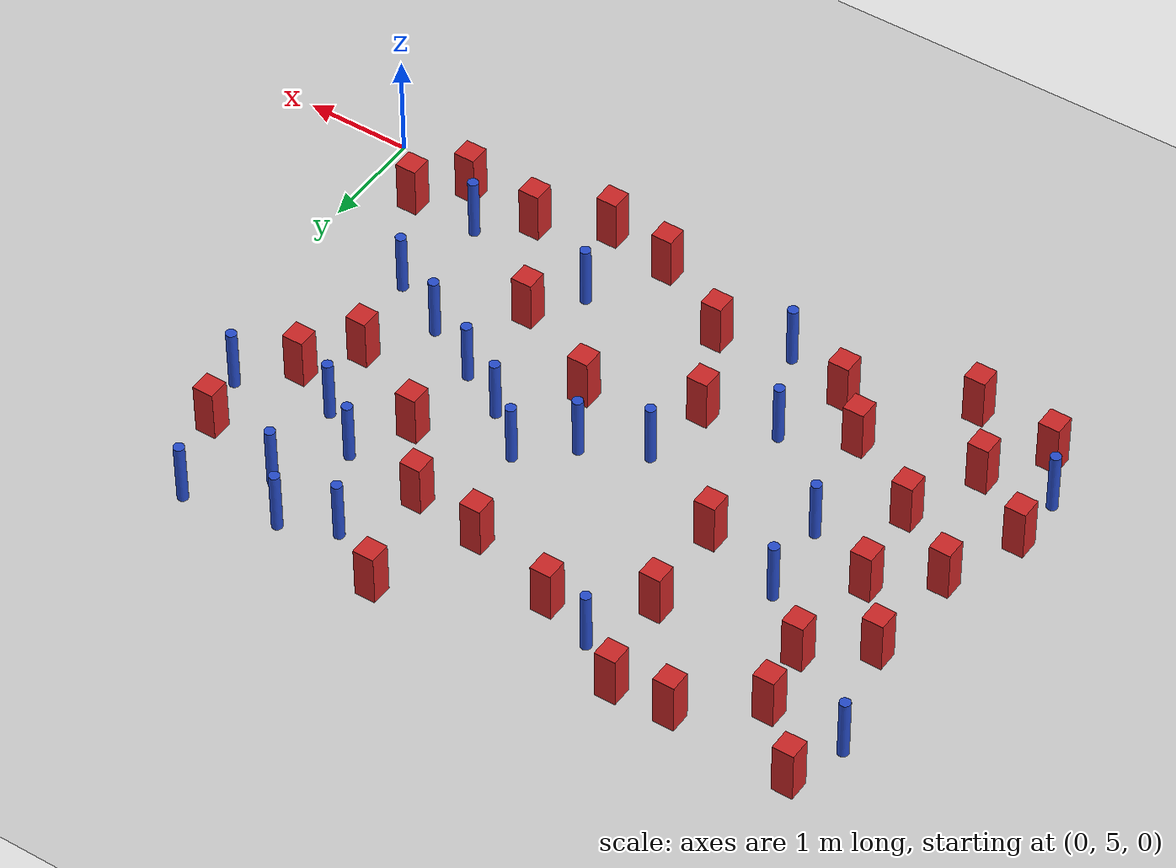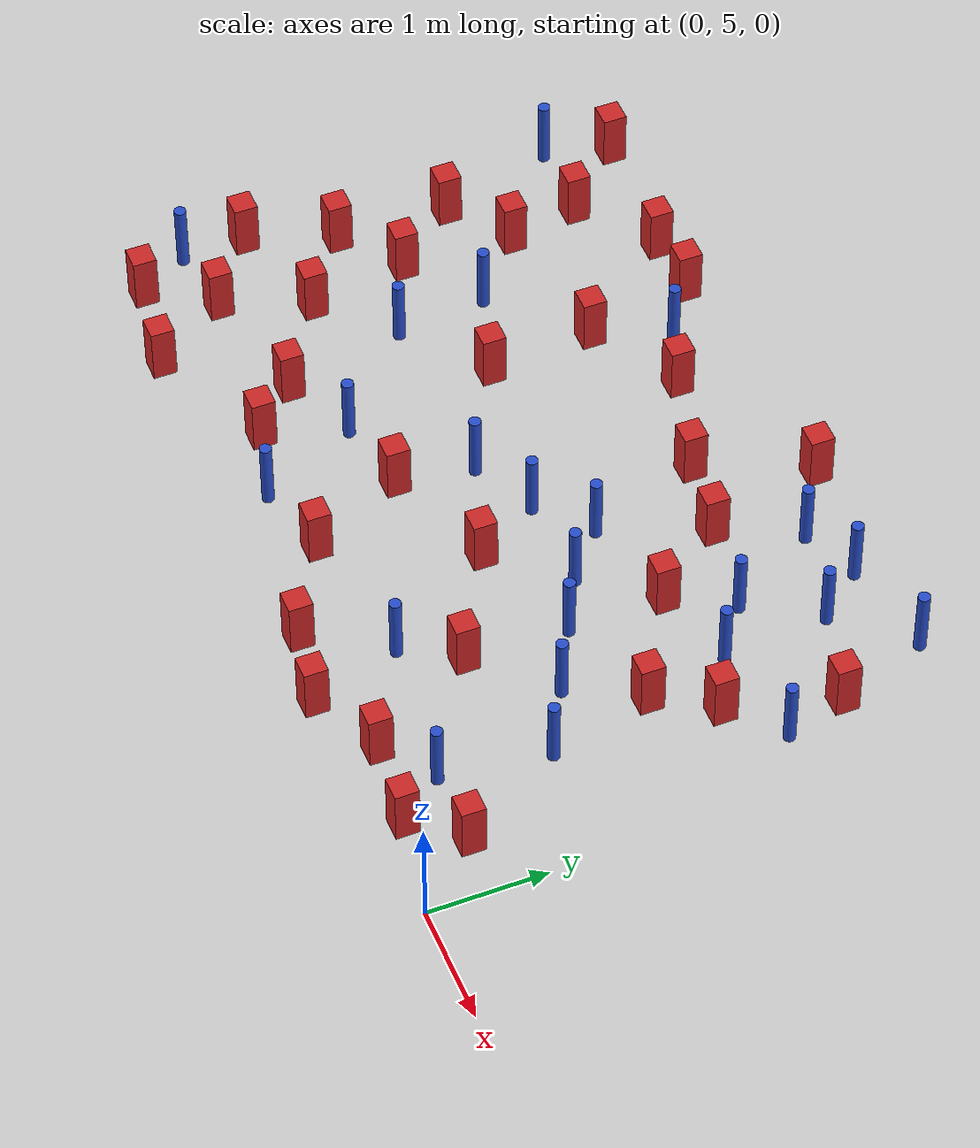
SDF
<sdf version="1.6">
 <world name="default">
  <model name="ground_plane">
   <static>1</static>
   <link name="link">
    <collision name="collision">
     <geometry><plane><normal>0 0 1</normal><size>100 100</size></plane></geometry>
     <surface><friction><ode><mu>100</mu><mu2>50</mu2></ode></friction></surface>
    </collision>
    <visual name="visual">
     <cast_shadows>0</cast_shadows>
     <geometry><plane><normal>0 0 1</normal><size>100 100</size></plane></geometry>
     <material>
      <ambient>1.0 1.0 1.0 1.0</ambient>
      <diffuse>0.8 0.8 0.8 1.0</diffuse>
      <specular>0.01 0.01 0.01 1.000000</specular>
     </material>
    </visual>
   </link>
  </model>
  <model name="square_post_obstacle1">
   <static>true</static>
   <pose>-5.27725975503 5.88324611764 8.22691968438e-08 7.2212513382e-06 -7.54495500217e-07 2.29674213826e-05</pose>
   <link name="link">
    <pose>0 0 0.25 0 -0 0</pose>
    <inertial>
     <mass>100</mass>
     <inertia>
      <ixx>0.166667</ixx>
      <ixy>0</ixy>
      <ixz>0</ixz>
      <iyy>0.166667</iyy>
      <iyz>0</iyz>
      <izz>0.166667</izz>
     </inertia>
    </inertial>
    <collision name="collision"><geometry><box><size>.2 .2 .5</size></box></geometry></collision>
    <visual name="visual">
     <geometry><box><size>.2 .2 .5</size></box></geometry>
     <material>
      <script><name>Gazebo/Red</name><uri>file://media/materials/scripts/gazebo.material</uri></script>
     </material>
    </visual>
   </link>
  </model>
  <model name="square_post_obstacle12">
   <static>true</static>
   <pose>-1.22124211983 7.31243710689 8.22691968438e-08 7.2212513382e-06 -7.54495500217e-07 2.29674213826e-05</pose>
   <link name="link">
    <pose>0 0 0.25 0 -0 0</pose>
    <inertial>
     <mass>100</mass>
     <inertia>
      <ixx>0.166667</ixx>
      <ixy>0</ixy>
      <ixz>0</ixz>
      <iyy>0.166667</iyy>
      <iyz>0</iyz>
      <izz>0.166667</izz>
     </inertia>
    </inertial>
    <collision name="collision"><geometry><box><size>.2 .2 .5</size></box></geometry></collision>
    <visual name="visual">
     <geometry><box><size>.2 .2 .5</size></box></geometry>
     <material>
      <script><name>Gazebo/Red</name><uri>file://media/materials/scripts/gazebo.material</uri></script>
     </material>
    </visual>
   </link>
  </model>
  <model name="square_post_obstacle13">
   <static>true</static>
   <pose>-5.09367767588 9.29673221735 8.22691968438e-08 7.22125133819e-06 -7.54495500217e-07 2.29674213826e-05</pose>
   <link name="link">
    <pose>0 0 0.25 0 -0 0</pose>
    <inertial>
     <mass>100</mass>
     <inertia>
      <ixx>0.166667</ixx>
      <ixy>0</ixy>
      <ixz>0</ixz>
      <iyy>0.166667</iyy>
      <iyz>0</iyz>
      <izz>0.166667</izz>
     </inertia>
    </inertial>
    <collision name="collision"><geometry><box><size>.2 .2 .5</size></box></geometry></collision>
    <visual name="visual">
     <geometry><box><size>.2 .2 .5</size></box></geometry>
     <material>
      <script><name>Gazebo/Red</name><uri>file://media/materials/scripts/gazebo.material</uri></script>
     </material>
    </visual>
   </link>
  </model>
  <model name="square_post_obstacle17">
   <static>true</static>
   <pose>-3.26479385472 8.55258115852 8.22691968438e-08 7.2212513382e-06 -7.54495500217e-07 2.29674213826e-05</pose>
   <link name="link">
    <pose>0 0 0.25 0 -0 0</pose>
    <inertial>
     <mass>100</mass>
     <inertia>
      <ixx>0.166667</ixx>
      <ixy>0</ixy>
      <ixz>0</ixz>
      <iyy>0.166667</iyy>
      <iyz>0</iyz>
      <izz>0.166667</izz>
     </inertia>
    </inertial>
    <collision name="collision"><geometry><box><size>.2 .2 .5</size></box></geometry></collision>
    <visual name="visual">
     <geometry><box><size>.2 .2 .5</size></box></geometry>
     <material>
      <script><name>Gazebo/Red</name><uri>file://media/materials/scripts/gazebo.material</uri></script>
     </material>
    </visual>
   </link>
  </model>
  <model name="square_post_obstacle18">
   <static>true</static>
   <pose>-6.2647670052 8.79094868232 8.22691968438e-08 7.22125133819e-06 -7.54495500217e-07 2.29674213826e-05</pose>
   <link name="link">
    <pose>0 0 0.25 0 -0 0</pose>
    <inertial>
     <mass>100</mass>
     <inertia>
      <ixx>0.166667</ixx>
      <ixy>0</ixy>
      <ixz>0</ixz>
      <iyy>0.166667</iyy>
      <iyz>0</iyz>
      <izz>0.166667</izz>
     </inertia>
    </inertial>
    <collision name="collision"><geometry><box><size>.2 .2 .5</size></box></geometry></collision>
    <visual name="visual">
     <geometry><box><size>.2 .2 .5</size></box></geometry>
     <material>
      <script><name>Gazebo/Red</name><uri>file://media/materials/scripts/gazebo.material</uri></script>
     </material>
    </visual>
   </link>
  </model>
  <model name="square_post_obstacle19">
   <static>true</static>
   <pose>-2.11735339929 6.15063905305 8.22691968438e-08 7.2212513382e-06 -7.54495500217e-07 2.29674213826e-05</pose>
   <link name="link">
    <pose>0 0 0.25 0 -0 0</pose>
    <inertial>
     <mass>100</mass>
     <inertia>
      <ixx>0.166667</ixx>
      <ixy>0</ixy>
      <ixz>0</ixz>
      <iyy>0.166667</iyy>
      <iyz>0</iyz>
      <izz>0.166667</izz>
     </inertia>
    </inertial>
    <collision name="collision"><geometry><box><size>.2 .2 .5</size></box></geometry></collision>
    <visual name="visual">
     <geometry><box><size>.2 .2 .5</size></box></geometry>
     <material>
      <script><name>Gazebo/Red</name><uri>file://media/materials/scripts/gazebo.material</uri></script>
     </material>
    </visual>
   </link>
  </model>
  <model name="square_post_obstacle26">
   <static>true</static>
   <pose>-6.66001022309 7.79403656012 8.22691968438e-08 7.2212513382e-06 -7.54495500217e-07 2.29674213826e-05</pose>
   <link name="link">
    <pose>0 0 0.25 0 -0 0</pose>
    <inertial>
     <mass>100</mass>
     <inertia>
      <ixx>0.166667</ixx>
      <ixy>0</ixy>
      <ixz>0</ixz>
      <iyy>0.166667</iyy>
      <iyz>0</iyz>
      <izz>0.166667</izz>
     </inertia>
    </inertial>
    <collision name="collision"><geometry><box><size>.2 .2 .5</size></box></geometry></collision>
    <visual name="visual">
     <geometry><box><size>.2 .2 .5</size></box></geometry>
     <material>
      <script><name>Gazebo/Red</name><uri>file://media/materials/scripts/gazebo.material</uri></script>
     </material>
    </visual>
   </link>
  </model>
  <model name="pole_obstacle27">
   <static>true</static>
   <pose>-0.940814675232 9.48779492167 2.88873142074e-08 -9.90536690779e-09 4.60219948967e-07 -1.20965994975e-07</pose>
   <link name="link">
    <pose>0 0 0.3 0 -0 0</pose>
    <inertial>
     <mass>1</mass>
     <inertia><ixx>0.145833</ixx><ixy>0</ixy><ixz>0</ixz><iyy>0.145833</iyy><iyz>0</iyz><izz>0.125</izz></inertia>
    </inertial>
    <collision name="collision">
     <geometry><cylinder><radius>0.05</radius><length>.6</length></cylinder></geometry>
    </collision>
    <visual name="visual">
     <geometry><cylinder><radius>0.05</radius><length>.6</length></cylinder></geometry>
     <material>
      <script><name>Gazebo/Blue</name><uri>file://media/materials/scripts/gazebo.material</uri></script>
     </material>
    </visual>
   </link>
  </model>
  <model name="pole_obstacle39">
   <static>true</static>
   <pose>-1.00793872897 6.44324985695 2.88873142074e-08 -9.90536689792e-09 4.6021994899e-07 -1.2096599496e-07</pose>
   <link name="link">
    <pose>0 0 0.3 0 -0 0</pose>
    <inertial>
     <mass>1</mass>
     <inertia><ixx>0.145833</ixx><ixy>0</ixy><ixz>0</ixz><iyy>0.145833</iyy><iyz>0</iyz><izz>0.125</izz></inertia>
    </inertial>
    <collision name="collision">
     <geometry><cylinder><radius>0.05</radius><length>.6</length></cylinder></geometry>
    </collision>
    <visual name="visual">
     <geometry><cylinder><radius>0.05</radius><length>.6</length></cylinder></geometry>
     <material>
      <script><name>Gazebo/Blue</name><uri>file://media/materials/scripts/gazebo.material</uri></script>
     </material>
    </visual>
   </link>
  </model>
  <model name="pole_obstacle41">
   <static>true</static>
   <pose>-1.12842331408 5.53875693274 2.88873142074e-08 -9.90536689852e-09 4.60219948989e-07 -1.2096599496e-07</pose>
   <link name="link">
    <pose>0 0 0.3 0 -0 0</pose>
    <inertial>
     <mass>1</mass>
     <inertia><ixx>0.145833</ixx><ixy>0</ixy><ixz>0</ixz><iyy>0.145833</iyy><iyz>0</iyz><izz>0.125</izz></inertia>
    </inertial>
    <collision name="collision">
     <geometry><cylinder><radius>0.05</radius><length>.6</length></cylinder></geometry>
    </collision>
    <visual name="visual">
     <geometry><cylinder><radius>0.05</radius><length>.6</length></cylinder></geometry>
     <material>
      <script><name>Gazebo/Blue</name><uri>file://media/materials/scripts/gazebo.material</uri></script>
     </material>
    </visual>
   </link>
  </model>
  <model name="square_post_obstacle42">
   <static>true</static>
   <pose>-0.912500162764 7.78980464417 8.22691968438e-08 7.22125133819e-06 -7.54495500217e-07 2.29674213826e-05</pose>
   <link name="link">
    <pose>0 0 0.25 0 -0 0</pose>
    <inertial>
     <mass>100</mass>
     <inertia>
      <ixx>0.166667</ixx>
      <ixy>0</ixy>
      <ixz>0</ixz>
      <iyy>0.166667</iyy>
      <iyz>0</iyz>
      <izz>0.166667</izz>
     </inertia>
    </inertial>
    <collision name="collision"><geometry><box><size>.2 .2 .5</size></box></geometry></collision>
    <visual name="visual">
     <geometry><box><size>.2 .2 .5</size></box></geometry>
     <material>
      <script><name>Gazebo/Red</name><uri>file://media/materials/scripts/gazebo.material</uri></script>
     </material>
    </visual>
   </link>
  </model>
  <model name="square_post_obstacle47">
   <static>true</static>
   <pose>-3.04344808934 6.66465341999 8.22691968438e-08 7.2212513382e-06 -7.54495500217e-07 2.29674213826e-05</pose>
   <link name="link">
    <pose>0 0 0.25 0 -0 0</pose>
    <inertial>
     <mass>100</mass>
     <inertia>
      <ixx>0.166667</ixx>
      <ixy>0</ixy>
      <ixz>0</ixz>
      <iyy>0.166667</iyy>
      <iyz>0</iyz>
      <izz>0.166667</izz>
     </inertia>
    </inertial>
    <collision name="collision"><geometry><box><size>.2 .2 .5</size></box></geometry></collision>
    <visual name="visual">
     <geometry><box><size>.2 .2 .5</size></box></geometry>
     <material>
      <script><name>Gazebo/Red</name><uri>file://media/materials/scripts/gazebo.material</uri></script>
     </material>
    </visual>
   </link>
  </model>
  <model name="pole_obstacle49">
   <static>true</static>
   <pose>-2.94736498721 7.59969101961 2.88873142074e-08 -9.90536689859e-09 4.60219948989e-07 -1.20965994961e-07</pose>
   <link name="link">
    <pose>0 0 0.3 0 -0 0</pose>
    <inertial>
     <mass>1</mass>
     <inertia><ixx>0.145833</ixx><ixy>0</ixy><ixz>0</ixz><iyy>0.145833</iyy><iyz>0</iyz><izz>0.125</izz></inertia>
    </inertial>
    <collision name="collision">
     <geometry><cylinder><radius>0.05</radius><length>.6</length></cylinder></geometry>
    </collision>
    <visual name="visual">
     <geometry><cylinder><radius>0.05</radius><length>.6</length></cylinder></geometry>
     <material>
      <script><name>Gazebo/Blue</name><uri>file://media/materials/scripts/gazebo.material</uri></script>
     </material>
    </visual>
   </link>
  </model>
  <model name="square_post_obstacle53">
   <static>true</static>
   <pose>-2.85525806124 9.46872264857 8.22691968438e-08 7.22125133819e-06 -7.54495500217e-07 2.29674213826e-05</pose>
   <link name="link">
    <pose>0 0 0.25 0 -0 0</pose>
    <inertial>
     <mass>100</mass>
     <inertia>
      <ixx>0.166667</ixx>
      <ixy>0</ixy>
      <ixz>0</ixz>
      <iyy>0.166667</iyy>
      <iyz>0</iyz>
      <izz>0.166667</izz>
     </inertia>
    </inertial>
    <collision name="collision"><geometry><box><size>.2 .2 .5</size></box></geometry></collision>
    <visual name="visual">
     <geometry><box><size>.2 .2 .5</size></box></geometry>
     <material>
      <script><name>Gazebo/Red</name><uri>file://media/materials/scripts/gazebo.material</uri></script>
     </material>
    </visual>
   </link>
  </model>
  <model name="square_post_obstacle61">
   <static>true</static>
   <pose>-2.09297929936 7.81468150367 8.22691968438e-08 7.22125133819e-06 -7.54495500217e-07 2.29674213826e-05</pose>
   <link name="link">
    <pose>0 0 0.25 0 -0 0</pose>
    <inertial>
     <mass>100</mass>
     <inertia>
      <ixx>0.166667</ixx>
      <ixy>0</ixy>
      <ixz>0</ixz>
      <iyy>0.166667</iyy>
      <iyz>0</iyz>
      <izz>0.166667</izz>
     </inertia>
    </inertial>
    <collision name="collision"><geometry><box><size>.2 .2 .5</size></box></geometry></collision>
    <visual name="visual">
     <geometry><box><size>.2 .2 .5</size></box></geometry>
     <material>
      <script><name>Gazebo/Red</name><uri>file://media/materials/scripts/gazebo.material</uri></script>
     </material>
    </visual>
   </link>
  </model>
  <model name="square_post_obstacle63">
   <static>true</static>
   <pose>-2.58996327546 8.44883795473 8.22691968438e-08 7.22125133819e-06 -7.54495500217e-07 2.29674213826e-05</pose>
   <link name="link">
    <pose>0 0 0.25 0 -0 0</pose>
    <inertial>
     <mass>100</mass>
     <inertia>
      <ixx>0.166667</ixx>
      <ixy>0</ixy>
      <ixz>0</ixz>
      <iyy>0.166667</iyy>
      <iyz>0</iyz>
      <izz>0.166667</izz>
     </inertia>
    </inertial>
    <collision name="collision"><geometry><box><size>.2 .2 .5</size></box></geometry></collision>
    <visual name="visual">
     <geometry><box><size>.2 .2 .5</size></box></geometry>
     <material>
      <script><name>Gazebo/Red</name><uri>file://media/materials/scripts/gazebo.material</uri></script>
     </material>
    </visual>
   </link>
  </model>
  <model name="square_post_obstacle65">
   <static>true</static>
   <pose>-6.14284121453 8.17292276092 8.22691968438e-08 7.22125133819e-06 -7.54495500217e-07 2.29674213826e-05</pose>
   <link name="link">
    <pose>0 0 0.25 0 -0 0</pose>
    <inertial>
     <mass>100</mass>
     <inertia>
      <ixx>0.166667</ixx>
      <ixy>0</ixy>
      <ixz>0</ixz>
      <iyy>0.166667</iyy>
      <iyz>0</iyz>
      <izz>0.166667</izz>
     </inertia>
    </inertial>
    <collision name="collision"><geometry><box><size>.2 .2 .5</size></box></geometry></collision>
    <visual name="visual">
     <geometry><box><size>.2 .2 .5</size></box></geometry>
     <material>
      <script><name>Gazebo/Red</name><uri>file://media/materials/scripts/gazebo.material</uri></script>
     </material>
    </visual>
   </link>
  </model>
  <model name="square_post_obstacle71">
   <static>true</static>
   <pose>-4.83649745632 7.46129267752 8.22691968438e-08 7.2212513382e-06 -7.54495500217e-07 2.29674213826e-05</pose>
   <link name="link">
    <pose>0 0 0.25 0 -0 0</pose>
    <inertial>
     <mass>100</mass>
     <inertia>
      <ixx>0.166667</ixx>
      <ixy>0</ixy>
      <ixz>0</ixz>
      <iyy>0.166667</iyy>
      <iyz>0</iyz>
      <izz>0.166667</izz>
     </inertia>
    </inertial>
    <collision name="collision"><geometry><box><size>.2 .2 .5</size></box></geometry></collision>
    <visual name="visual">
     <geometry><box><size>.2 .2 .5</size></box></geometry>
     <material>
      <script><name>Gazebo/Red</name><uri>file://media/materials/scripts/gazebo.material</uri></script>
     </material>
    </visual>
   </link>
  </model>
  <model name="pole_obstacle76">
   <static>true</static>
   <pose>-5.60341862306 7.70546638958 2.88873142074e-08 -9.90536690842e-09 4.60219948965e-07 -1.20965994976e-07</pose>
   <link name="link">
    <pose>0 0 0.3 0 -0 0</pose>
    <inertial>
     <mass>1</mass>
     <inertia><ixx>0.145833</ixx><ixy>0</ixy><ixz>0</ixz><iyy>0.145833</iyy><iyz>0</iyz><izz>0.125</izz></inertia>
    </inertial>
    <collision name="collision">
     <geometry><cylinder><radius>0.05</radius><length>.6</length></cylinder></geometry>
    </collision>
    <visual name="visual">
     <geometry><cylinder><radius>0.05</radius><length>.6</length></cylinder></geometry>
     <material>
      <script><name>Gazebo/Blue</name><uri>file://media/materials/scripts/gazebo.material</uri></script>
     </material>
    </visual>
   </link>
  </model>
  <model name="pole_obstacle81">
   <static>true</static>
   <pose>-2.26974032248 9.11469632496 2.88873142074e-08 -9.90536692318e-09 4.6021994893e-07 -1.20965994988e-07</pose>
   <link name="link">
    <pose>0 0 0.3 0 -0 0</pose>
    <inertial>
     <mass>1</mass>
     <inertia><ixx>0.145833</ixx><ixy>0</ixy><ixz>0</ixz><iyy>0.145833</iyy><iyz>0</iyz><izz>0.125</izz></inertia>
    </inertial>
    <collision name="collision">
     <geometry><cylinder><radius>0.05</radius><length>.6</length></cylinder></geometry>
    </collision>
    <visual name="visual">
     <geometry><cylinder><radius>0.05</radius><length>.6</length></cylinder></geometry>
     <material>
      <script><name>Gazebo/Blue</name><uri>file://media/materials/scripts/gazebo.material</uri></script>
     </material>
    </visual>
   </link>
  </model>
  <model name="square_post_obstacle80">
   <static>true</static>
   <pose>-2.81145289041 5.04170754927 8.22691968438e-08 7.2212513382e-06 -7.54495500217e-07 2.29674213826e-05</pose>
   <link name="link">
    <pose>0 0 0.25 0 -0 0</pose>
    <inertial>
     <mass>100</mass>
     <inertia>
      <ixx>0.166667</ixx>
      <ixy>0</ixy>
      <ixz>0</ixz>
      <iyy>0.166667</iyy>
      <iyz>0</iyz>
      <izz>0.166667</izz>
     </inertia>
    </inertial>
    <collision name="collision"><geometry><box><size>.2 .2 .5</size></box></geometry></collision>
    <visual name="visual">
     <geometry><box><size>.2 .2 .5</size></box></geometry>
     <material>
      <script><name>Gazebo/Red</name><uri>file://media/materials/scripts/gazebo.material</uri></script>
     </material>
    </visual>
   </link>
  </model>
  <model name="pole_obstacle97">
   <static>true</static>
   <pose>-1.45153684592 8.92544525545 2.88873142074e-08 -9.90536690474e-09 4.60219948974e-07 -1.2096599497e-07</pose>
   <link name="link">
    <pose>0 0 0.3 0 -0 0</pose>
    <inertial>
     <mass>1</mass>
     <inertia><ixx>0.145833</ixx><ixy>0</ixy><ixz>0</ixz><iyy>0.145833</iyy><iyz>0</iyz><izz>0.125</izz></inertia>
    </inertial>
    <collision name="collision">
     <geometry><cylinder><radius>0.05</radius><length>.6</length></cylinder></geometry>
    </collision>
    <visual name="visual">
     <geometry><cylinder><radius>0.05</radius><length>.6</length></cylinder></geometry>
     <material>
      <script><name>Gazebo/Blue</name><uri>file://media/materials/scripts/gazebo.material</uri></script>
     </material>
    </visual>
   </link>
  </model>
  <model name="pole_obstacle99">
   <static>true</static>
   <pose>-1.78354807055 9.31466761858 2.88873142074e-08 -9.90536690474e-09 4.60219948974e-07 -1.2096599497e-07</pose>
   <link name="link">
    <pose>0 0 0.3 0 -0 0</pose>
    <inertial>
     <mass>1</mass>
     <inertia><ixx>0.145833</ixx><ixy>0</ixy><ixz>0</ixz><iyy>0.145833</iyy><iyz>0</iyz><izz>0.125</izz></inertia>
    </inertial>
    <collision name="collision">
     <geometry><cylinder><radius>0.05</radius><length>.6</length></cylinder></geometry>
    </collision>
    <visual name="visual">
     <geometry><cylinder><radius>0.05</radius><length>.6</length></cylinder></geometry>
     <material>
      <script><name>Gazebo/Blue</name><uri>file://media/materials/scripts/gazebo.material</uri></script>
     </material>
    </visual>
   </link>
  </model>
  <model name="square_post_obstacle90">
   <static>true</static>
   <pose>-6.97405887946 6.10694326956 8.22691968438e-08 7.22125133819e-06 -7.54495500217e-07 2.29674213826e-05</pose>
   <link name="link">
    <pose>0 0 0.25 0 -0 0</pose>
    <inertial>
     <mass>100</mass>
     <inertia>
      <ixx>0.166667</ixx>
      <ixy>0</ixy>
      <ixz>0</ixz>
      <iyy>0.166667</iyy>
      <iyz>0</iyz>
      <izz>0.166667</izz>
     </inertia>
    </inertial>
    <collision name="collision"><geometry><box><size>.2 .2 .5</size></box></geometry></collision>
    <visual name="visual">
     <geometry><box><size>.2 .2 .5</size></box></geometry>
     <material>
      <script><name>Gazebo/Red</name><uri>file://media/materials/scripts/gazebo.material</uri></script>
     </material>
    </visual>
   </link>
  </model>
  <model name="square_post_obstacle92">
   <static>true</static>
   <pose>-4.00652110306 6.30817327329 8.22691968438e-08 7.2212513382e-06 -7.54495500217e-07 2.29674213826e-05</pose>
   <link name="link">
    <pose>0 0 0.25 0 -0 0</pose>
    <inertial>
     <mass>100</mass>
     <inertia>
      <ixx>0.166667</ixx>
      <ixy>0</ixy>
      <ixz>0</ixz>
      <iyy>0.166667</iyy>
      <iyz>0</iyz>
      <izz>0.166667</izz>
     </inertia>
    </inertial>
    <collision name="collision"><geometry><box><size>.2 .2 .5</size></box></geometry></collision>
    <visual name="visual">
     <geometry><box><size>.2 .2 .5</size></box></geometry>
     <material>
      <script><name>Gazebo/Red</name><uri>file://media/materials/scripts/gazebo.material</uri></script>
     </material>
    </visual>
   </link>
  </model>
  <model name="pole_obstacle107">
   <static>true</static>
   <pose>-4.64348553256 8.99798818384 2.88873142074e-08 -9.9053668967e-09 4.60219948993e-07 -1.20965994957e-07</pose>
   <link name="link">
    <pose>0 0 0.3 0 -0 0</pose>
    <inertial>
     <mass>1</mass>
     <inertia><ixx>0.145833</ixx><ixy>0</ixy><ixz>0</ixz><iyy>0.145833</iyy><iyz>0</iyz><izz>0.125</izz></inertia>
    </inertial>
    <collision name="collision">
     <geometry><cylinder><radius>0.05</radius><length>.6</length></cylinder></geometry>
    </collision>
    <visual name="visual">
     <geometry><cylinder><radius>0.05</radius><length>.6</length></cylinder></geometry>
     <material>
      <script><name>Gazebo/Blue</name><uri>file://media/materials/scripts/gazebo.material</uri></script>
     </material>
    </visual>
   </link>
  </model>
  <model name="square_post_obstacle96">
   <static>true</static>
   <pose>-6.80104784933 9.340860004 8.22691968438e-08 7.22125133819e-06 -7.54495500217e-07 2.29674213826e-05</pose>
   <link name="link">
    <pose>0 0 0.25 0 -0 0</pose>
    <inertial>
     <mass>100</mass>
     <inertia>
      <ixx>0.166667</ixx>
      <ixy>0</ixy>
      <ixz>0</ixz>
      <iyy>0.166667</iyy>
      <iyz>0</iyz>
      <izz>0.166667</izz>
     </inertia>
    </inertial>
    <collision name="collision"><geometry><box><size>.2 .2 .5</size></box></geometry></collision>
    <visual name="visual">
     <geometry><box><size>.2 .2 .5</size></box></geometry>
     <material>
      <script><name>Gazebo/Red</name><uri>file://media/materials/scripts/gazebo.material</uri></script>
     </material>
    </visual>
   </link>
  </model>
  <model name="pole_obstacle109">
   <static>true</static>
   <pose>-4.6695938485 6.16838677087 2.88873142074e-08 -9.90536690842e-09 4.60219948965e-07 -1.20965994976e-07</pose>
   <link name="link">
    <pose>0 0 0.3 0 -0 0</pose>
    <inertial>
     <mass>1</mass>
     <inertia><ixx>0.145833</ixx><ixy>0</ixy><ixz>0</ixz><iyy>0.145833</iyy><iyz>0</iyz><izz>0.125</izz></inertia>
    </inertial>
    <collision name="collision">
     <geometry><cylinder><radius>0.05</radius><length>.6</length></cylinder></geometry>
    </collision>
    <visual name="visual">
     <geometry><cylinder><radius>0.05</radius><length>.6</length></cylinder></geometry>
     <material>
      <script><name>Gazebo/Blue</name><uri>file://media/materials/scripts/gazebo.material</uri></script>
     </material>
    </visual>
   </link>
  </model>
  <model name="pole_obstacle119">
   <static>true</static>
   <pose>-1.38838129083 8.03033146931 2.88873142074e-08 -9.90536689535e-09 4.60219948996e-07 -1.20965994956e-07</pose>
   <link name="link">
    <pose>0 0 0.3 0 -0 0</pose>
    <inertial>
     <mass>1</mass>
     <inertia><ixx>0.145833</ixx><ixy>0</ixy><ixz>0</ixz><iyy>0.145833</iyy><iyz>0</iyz><izz>0.125</izz></inertia>
    </inertial>
    <collision name="collision">
     <geometry><cylinder><radius>0.05</radius><length>.6</length></cylinder></geometry>
    </collision>
    <visual name="visual">
     <geometry><cylinder><radius>0.05</radius><length>.6</length></cylinder></geometry>
     <material>
      <script><name>Gazebo/Blue</name><uri>file://media/materials/scripts/gazebo.material</uri></script>
     </material>
    </visual>
   </link>
  </model>
  <model name="pole_obstacle120">
   <static>true</static>
   <pose>-3.3613483737 7.22322043992 2.88873142074e-08 -9.90536689859e-09 4.60219948989e-07 -1.20965994961e-07</pose>
   <link name="link">
    <pose>0 0 0.3 0 -0 0</pose>
    <inertial>
     <mass>1</mass>
     <inertia><ixx>0.145833</ixx><ixy>0</ixy><ixz>0</ixz><iyy>0.145833</iyy><iyz>0</iyz><izz>0.125</izz></inertia>
    </inertial>
    <collision name="collision">
     <geometry><cylinder><radius>0.05</radius><length>.6</length></cylinder></geometry>
    </collision>
    <visual name="visual">
     <geometry><cylinder><radius>0.05</radius><length>.6</length></cylinder></geometry>
     <material>
      <script><name>Gazebo/Blue</name><uri>file://media/materials/scripts/gazebo.material</uri></script>
     </material>
    </visual>
   </link>
  </model>
  <model name="square_post_obstacle129">
   <static>true</static>
   <pose>-0.820255031827 5.14355957472 8.22691968438e-08 7.2212513382e-06 -7.54495500217e-07 2.29674213826e-05</pose>
   <link name="link">
    <pose>0 0 0.25 0 -0 0</pose>
    <inertial>
     <mass>100</mass>
     <inertia>
      <ixx>0.166667</ixx>
      <ixy>0</ixy>
      <ixz>0</ixz>
      <iyy>0.166667</iyy>
      <iyz>0</iyz>
      <izz>0.166667</izz>
     </inertia>
    </inertial>
    <collision name="collision"><geometry><box><size>.2 .2 .5</size></box></geometry></collision>
    <visual name="visual">
     <geometry><box><size>.2 .2 .5</size></box></geometry>
     <material>
      <script><name>Gazebo/Red</name><uri>file://media/materials/scripts/gazebo.material</uri></script>
     </material>
    </visual>
   </link>
  </model>
  <model name="pole_obstacle143">
   <static>true</static>
   <pose>-3.91117797765 6.95952132032 2.88873142074e-08 -9.90536689859e-09 4.60219948989e-07 -1.20965994961e-07</pose>
   <link name="link">
    <pose>0 0 0.3 0 -0 0</pose>
    <inertial>
     <mass>1</mass>
     <inertia><ixx>0.145833</ixx><ixy>0</ixy><ixz>0</ixz><iyy>0.145833</iyy><iyz>0</iyz><izz>0.125</izz></inertia>
    </inertial>
    <collision name="collision">
     <geometry><cylinder><radius>0.05</radius><length>.6</length></cylinder></geometry>
    </collision>
    <visual name="visual">
     <geometry><cylinder><radius>0.05</radius><length>.6</length></cylinder></geometry>
     <material>
      <script><name>Gazebo/Blue</name><uri>file://media/materials/scripts/gazebo.material</uri></script>
     </material>
    </visual>
   </link>
  </model>
  <model name="pole_obstacle152">
   <static>true</static>
   <pose>-2.40570253434 5.69941496235 2.88873142074e-08 -9.90536689859e-09 4.60219948989e-07 -1.20965994961e-07</pose>
   <link name="link">
    <pose>0 0 0.3 0 -0 0</pose>
    <inertial>
     <mass>1</mass>
     <inertia><ixx>0.145833</ixx><ixy>0</ixy><ixz>0</ixz><iyy>0.145833</iyy><iyz>0</iyz><izz>0.125</izz></inertia>
    </inertial>
    <collision name="collision">
     <geometry><cylinder><radius>0.05</radius><length>.6</length></cylinder></geometry>
    </collision>
    <visual name="visual">
     <geometry><cylinder><radius>0.05</radius><length>.6</length></cylinder></geometry>
     <material>
      <script><name>Gazebo/Blue</name><uri>file://media/materials/scripts/gazebo.material</uri></script>
     </material>
    </visual>
   </link>
  </model>
  <model name="pole_obstacle157">
   <static>true</static>
   <pose>-1.55669706081 6.73497164417 2.88873142074e-08 -9.90536689852e-09 4.60219948989e-07 -1.2096599496e-07</pose>
   <link name="link">
    <pose>0 0 0.3 0 -0 0</pose>
    <inertial>
     <mass>1</mass>
     <inertia><ixx>0.145833</ixx><ixy>0</ixy><ixz>0</ixz><iyy>0.145833</iyy><iyz>0</iyz><izz>0.125</izz></inertia>
    </inertial>
    <collision name="collision">
     <geometry><cylinder><radius>0.05</radius><length>.6</length></cylinder></geometry>
    </collision>
    <visual name="visual">
     <geometry><cylinder><radius>0.05</radius><length>.6</length></cylinder></geometry>
     <material>
      <script><name>Gazebo/Blue</name><uri>file://media/materials/scripts/gazebo.material</uri></script>
     </material>
    </visual>
   </link>
  </model>
  <model name="square_post_obstacle156">
   <static>true</static>
   <pose>-5.63419194478 9.26939019998 8.22691968438e-08 7.22125133819e-06 -7.54495500217e-07 2.29674213826e-05</pose>
   <link name="link">
    <pose>0 0 0.25 0 -0 0</pose>
    <inertial>
     <mass>100</mass>
     <inertia>
      <ixx>0.166667</ixx>
      <ixy>0</ixy>
      <ixz>0</ixz>
      <iyy>0.166667</iyy>
      <iyz>0</iyz>
      <izz>0.166667</izz>
     </inertia>
    </inertial>
    <collision name="collision"><geometry><box><size>.2 .2 .5</size></box></geometry></collision>
    <visual name="visual">
     <geometry><box><size>.2 .2 .5</size></box></geometry>
     <material>
      <script><name>Gazebo/Red</name><uri>file://media/materials/scripts/gazebo.material</uri></script>
     </material>
    </visual>
   </link>
  </model>
  <model name="square_post_obstacle158">
   <static>true</static>
   <pose>-6.69979270975 6.83405982117 8.22691968438e-08 7.22125133819e-06 -7.54495500217e-07 2.29674213826e-05</pose>
   <link name="link">
    <pose>0 0 0.25 0 -0 0</pose>
    <inertial>
     <mass>100</mass>
     <inertia>
      <ixx>0.166667</ixx>
      <ixy>0</ixy>
      <ixz>0</ixz>
      <iyy>0.166667</iyy>
      <iyz>0</iyz>
      <izz>0.166667</izz>
     </inertia>
    </inertial>
    <collision name="collision"><geometry><box><size>.2 .2 .5</size></box></geometry></collision>
    <visual name="visual">
     <geometry><box><size>.2 .2 .5</size></box></geometry>
     <material>
      <script><name>Gazebo/Red</name><uri>file://media/materials/scripts/gazebo.material</uri></script>
     </material>
    </visual>
   </link>
  </model>
  <model name="square_post_obstacle159">
   <static>true</static>
   <pose>-4.88673134054 5.49525850302 8.22691968438e-08 7.2212513382e-06 -7.54495500217e-07 2.29674213826e-05</pose>
   <link name="link">
    <pose>0 0 0.25 0 -0 0</pose>
    <inertial>
     <mass>100</mass>
     <inertia>
      <ixx>0.166667</ixx>
      <ixy>0</ixy>
      <ixz>0</ixz>
      <iyy>0.166667</iyy>
      <iyz>0</iyz>
      <izz>0.166667</izz>
     </inertia>
    </inertial>
    <collision name="collision"><geometry><box><size>.2 .2 .5</size></box></geometry></collision>
    <visual name="visual">
     <geometry><box><size>.2 .2 .5</size></box></geometry>
     <material>
      <script><name>Gazebo/Red</name><uri>file://media/materials/scripts/gazebo.material</uri></script>
     </material>
    </visual>
   </link>
  </model>
  <model name="square_post_obstacle165">
   <static>true</static>
   <pose>-6.0582038664 6.37735267242 8.22691968438e-08 7.2212513382e-06 -7.54495500217e-07 2.29674213826e-05</pose>
   <link name="link">
    <pose>0 0 0.25 0 -0 0</pose>
    <inertial>
     <mass>100</mass>
     <inertia>
      <ixx>0.166667</ixx>
      <ixy>0</ixy>
      <ixz>0</ixz>
      <iyy>0.166667</iyy>
      <iyz>0</iyz>
      <izz>0.166667</izz>
     </inertia>
    </inertial>
    <collision name="collision"><geometry><box><size>.2 .2 .5</size></box></geometry></collision>
    <visual name="visual">
     <geometry><box><size>.2 .2 .5</size></box></geometry>
     <material>
      <script><name>Gazebo/Red</name><uri>file://media/materials/scripts/gazebo.material</uri></script>
     </material>
    </visual>
   </link>
  </model>
  <model name="square_post_obstacle166">
   <static>true</static>
   <pose>-5.9219318824 5.00804456005 8.22691968438e-08 7.2212513382e-06 -7.54495500217e-07 2.29674213826e-05</pose>
   <link name="link">
    <pose>0 0 0.25 0 -0 0</pose>
    <inertial>
     <mass>100</mass>
     <inertia>
      <ixx>0.166667</ixx>
      <ixy>0</ixy>
      <ixz>0</ixz>
      <iyy>0.166667</iyy>
      <iyz>0</iyz>
      <izz>0.166667</izz>
     </inertia>
    </inertial>
    <collision name="collision"><geometry><box><size>.2 .2 .5</size></box></geometry></collision>
    <visual name="visual">
     <geometry><box><size>.2 .2 .5</size></box></geometry>
     <material>
      <script><name>Gazebo/Red</name><uri>file://media/materials/scripts/gazebo.material</uri></script>
     </material>
    </visual>
   </link>
  </model>
  <model name="pole_obstacle180">
   <static>true</static>
   <pose>-2.54665657196 7.25548141159 2.88873142074e-08 -9.90536689859e-09 4.60219948989e-07 -1.20965994961e-07</pose>
   <link name="link">
    <pose>0 0 0.3 0 -0 0</pose>
    <inertial>
     <mass>1</mass>
     <inertia><ixx>0.145833</ixx><ixy>0</ixy><ixz>0</ixz><iyy>0.145833</iyy><iyz>0</iyz><izz>0.125</izz></inertia>
    </inertial>
    <collision name="collision">
     <geometry><cylinder><radius>0.05</radius><length>.6</length></cylinder></geometry>
    </collision>
    <visual name="visual">
     <geometry><cylinder><radius>0.05</radius><length>.6</length></cylinder></geometry>
     <material>
      <script><name>Gazebo/Blue</name><uri>file://media/materials/scripts/gazebo.material</uri></script>
     </material>
    </visual>
   </link>
  </model>
  <model name="pole_obstacle183">
   <static>true</static>
   <pose>-0.503638536793 8.18391364313 2.88873142074e-08 -9.90536691171e-09 4.60219948957e-07 -1.20965994981e-07</pose>
   <link name="link">
    <pose>0 0 0.3 0 -0 0</pose>
    <inertial>
     <mass>1</mass>
     <inertia><ixx>0.145833</ixx><ixy>0</ixy><ixz>0</ixz><iyy>0.145833</iyy><iyz>0</iyz><izz>0.125</izz></inertia>
    </inertial>
    <collision name="collision">
     <geometry><cylinder><radius>0.05</radius><length>.6</length></cylinder></geometry>
    </collision>
    <visual name="visual">
     <geometry><cylinder><radius>0.05</radius><length>.6</length></cylinder></geometry>
     <material>
      <script><name>Gazebo/Blue</name><uri>file://media/materials/scripts/gazebo.material</uri></script>
     </material>
    </visual>
   </link>
  </model>
  <model name="square_post_obstacle172">
   <static>true</static>
   <pose>-4.90509933754 8.36934208767 8.22691968438e-08 7.22125133819e-06 -7.54495500217e-07 2.29674213826e-05</pose>
   <link name="link">
    <pose>0 0 0.25 0 -0 0</pose>
    <inertial>
     <mass>100</mass>
     <inertia>
      <ixx>0.166667</ixx>
      <ixy>0</ixy>
      <ixz>0</ixz>
      <iyy>0.166667</iyy>
      <iyz>0</iyz>
      <izz>0.166667</izz>
     </inertia>
    </inertial>
    <collision name="collision"><geometry><box><size>.2 .2 .5</size></box></geometry></collision>
    <visual name="visual">
     <geometry><box><size>.2 .2 .5</size></box></geometry>
     <material>
      <script><name>Gazebo/Red</name><uri>file://media/materials/scripts/gazebo.material</uri></script>
     </material>
    </visual>
   </link>
  </model>
  <model name="pole_obstacle185">
   <static>true</static>
   <pose>-1.81292221689 8.33870478931 2.88873142074e-08 -9.90536690474e-09 4.60219948974e-07 -1.2096599497e-07</pose>
   <link name="link">
    <pose>0 0 0.3 0 -0 0</pose>
    <inertial>
     <mass>1</mass>
     <inertia><ixx>0.145833</ixx><ixy>0</ixy><ixz>0</ixz><iyy>0.145833</iyy><iyz>0</iyz><izz>0.125</izz></inertia>
    </inertial>
    <collision name="collision">
     <geometry><cylinder><radius>0.05</radius><length>.6</length></cylinder></geometry>
    </collision>
    <visual name="visual">
     <geometry><cylinder><radius>0.05</radius><length>.6</length></cylinder></geometry>
     <material>
      <script><name>Gazebo/Blue</name><uri>file://media/materials/scripts/gazebo.material</uri></script>
     </material>
    </visual>
   </link>
  </model>
  <model name="square_post_obstacle176">
   <static>true</static>
   <pose>-6.71593285762 5.13381725439 8.22691968438e-08 7.22125133819e-06 -7.54495500217e-07 2.29674213826e-05</pose>
   <link name="link">
    <pose>0 0 0.25 0 -0 0</pose>
    <inertial>
     <mass>100</mass>
     <inertia>
      <ixx>0.166667</ixx>
      <ixy>0</ixy>
      <ixz>0</ixz>
      <iyy>0.166667</iyy>
      <iyz>0</iyz>
      <izz>0.166667</izz>
     </inertia>
    </inertial>
    <collision name="collision"><geometry><box><size>.2 .2 .5</size></box></geometry></collision>
    <visual name="visual">
     <geometry><box><size>.2 .2 .5</size></box></geometry>
     <material>
      <script><name>Gazebo/Red</name><uri>file://media/materials/scripts/gazebo.material</uri></script>
     </material>
    </visual>
   </link>
  </model>
  <model name="square_post_obstacle182">
   <static>true</static>
   <pose>-0.480180529314 5.54338381063 8.22691968438e-08 7.22125133819e-06 -7.54495500217e-07 2.29674213826e-05</pose>
   <link name="link">
    <pose>0 0 0.25 0 -0 0</pose>
    <inertial>
     <mass>100</mass>
     <inertia>
      <ixx>0.166667</ixx>
      <ixy>0</ixy>
      <ixz>0</ixz>
      <iyy>0.166667</iyy>
      <iyz>0</iyz>
      <izz>0.166667</izz>
     </inertia>
    </inertial>
    <collision name="collision"><geometry><box><size>.2 .2 .5</size></box></geometry></collision>
    <visual name="visual">
     <geometry><box><size>.2 .2 .5</size></box></geometry>
     <material>
      <script><name>Gazebo/Red</name><uri>file://media/materials/scripts/gazebo.material</uri></script>
     </material>
    </visual>
   </link>
  </model>
  <model name="square_post_obstacle188">
   <static>true</static>
   <pose>-4.14574826003 8.82067602701 8.22691968438e-08 7.22125133819e-06 -7.54495500217e-07 2.29674213826e-05</pose>
   <link name="link">
    <pose>0 0 0.25 0 -0 0</pose>
    <inertial>
     <mass>100</mass>
     <inertia>
      <ixx>0.166667</ixx>
      <ixy>0</ixy>
      <ixz>0</ixz>
      <iyy>0.166667</iyy>
      <iyz>0</iyz>
      <izz>0.166667</izz>
     </inertia>
    </inertial>
    <collision name="collision"><geometry><box><size>.2 .2 .5</size></box></geometry></collision>
    <visual name="visual">
     <geometry><box><size>.2 .2 .5</size></box></geometry>
     <material>
      <script><name>Gazebo/Red</name><uri>file://media/materials/scripts/gazebo.material</uri></script>
     </material>
    </visual>
   </link>
  </model>
  <model name="square_post_obstacle191">
   <static>true</static>
   <pose>-0.65646737258 8.69839418821 8.22691968438e-08 7.22125133819e-06 -7.54495500217e-07 2.29674213826e-05</pose>
   <link name="link">
    <pose>0 0 0.25 0 -0 0</pose>
    <inertial>
     <mass>100</mass>
     <inertia>
      <ixx>0.166667</ixx>
      <ixy>0</ixy>
      <ixz>0</ixz>
      <iyy>0.166667</iyy>
      <iyz>0</iyz>
      <izz>0.166667</izz>
     </inertia>
    </inertial>
    <collision name="collision"><geometry><box><size>.2 .2 .5</size></box></geometry></collision>
    <visual name="visual">
     <geometry><box><size>.2 .2 .5</size></box></geometry>
     <material>
      <script><name>Gazebo/Red</name><uri>file://media/materials/scripts/gazebo.material</uri></script>
     </material>
    </visual>
   </link>
  </model>
  <model name="square_post_obstacle193">
   <static>true</static>
   <pose>-6.34988323468 5.65956097732 8.22691968438e-08 7.22125133819e-06 -7.54495500217e-07 2.29674213826e-05</pose>
   <link name="link">
    <pose>0 0 0.25 0 -0 0</pose>
    <inertial>
     <mass>100</mass>
     <inertia>
      <ixx>0.166667</ixx>
      <ixy>0</ixy>
      <ixz>0</ixz>
      <iyy>0.166667</iyy>
      <iyz>0</iyz>
      <izz>0.166667</izz>
     </inertia>
    </inertial>
    <collision name="collision"><geometry><box><size>.2 .2 .5</size></box></geometry></collision>
    <visual name="visual">
     <geometry><box><size>.2 .2 .5</size></box></geometry>
     <material>
      <script><name>Gazebo/Red</name><uri>file://media/materials/scripts/gazebo.material</uri></script>
     </material>
    </visual>
   </link>
  </model>
  <model name="pole_obstacle205">
   <static>true</static>
   <pose>-5.51571806121 6.92946006351 2.88873142074e-08 -9.90536690842e-09 4.60219948965e-07 -1.20965994976e-07</pose>
   <link name="link">
    <pose>0 0 0.3 0 -0 0</pose>
    <inertial>
     <mass>1</mass>
     <inertia><ixx>0.145833</ixx><ixy>0</ixy><ixz>0</ixz><iyy>0.145833</iyy><iyz>0</iyz><izz>0.125</izz></inertia>
    </inertial>
    <collision name="collision">
     <geometry><cylinder><radius>0.05</radius><length>.6</length></cylinder></geometry>
    </collision>
    <visual name="visual">
     <geometry><cylinder><radius>0.05</radius><length>.6</length></cylinder></geometry>
     <material>
      <script><name>Gazebo/Blue</name><uri>file://media/materials/scripts/gazebo.material</uri></script>
     </material>
    </visual>
   </link>
  </model>
  <model name="pole_obstacle215">
   <static>true</static>
   <pose>-4.2655962907 5.3241635052 2.88873142074e-08 -9.90536690842e-09 4.60219948965e-07 -1.20965994976e-07</pose>
   <link name="link">
    <pose>0 0 0.3 0 -0 0</pose>
    <inertial>
     <mass>1</mass>
     <inertia><ixx>0.145833</ixx><ixy>0</ixy><ixz>0</ixz><iyy>0.145833</iyy><iyz>0</iyz><izz>0.125</izz></inertia>
    </inertial>
    <collision name="collision">
     <geometry><cylinder><radius>0.05</radius><length>.6</length></cylinder></geometry>
    </collision>
    <visual name="visual">
     <geometry><cylinder><radius>0.05</radius><length>.6</length></cylinder></geometry>
     <material>
      <script><name>Gazebo/Blue</name><uri>file://media/materials/scripts/gazebo.material</uri></script>
     </material>
    </visual>
   </link>
  </model>
  <model name="square_post_obstacle199">
   <static>true</static>
   <pose>-1.54710422594 5.21317991385 8.22691968438e-08 7.2212513382e-06 -7.54495500217e-07 2.29674213826e-05</pose>
   <link name="link">
    <pose>0 0 0.25 0 -0 0</pose>
    <inertial>
     <mass>100</mass>
     <inertia>
      <ixx>0.166667</ixx>
      <ixy>0</ixy>
      <ixz>0</ixz>
      <iyy>0.166667</iyy>
      <iyz>0</iyz>
      <izz>0.166667</izz>
     </inertia>
    </inertial>
    <collision name="collision"><geometry><box><size>.2 .2 .5</size></box></geometry></collision>
    <visual name="visual">
     <geometry><box><size>.2 .2 .5</size></box></geometry>
     <material>
      <script><name>Gazebo/Red</name><uri>file://media/materials/scripts/gazebo.material</uri></script>
     </material>
    </visual>
   </link>
  </model>
  <model name="square_post_obstacle202">
   <static>true</static>
   <pose>-2.16234654076 4.92284520387 8.22691968438e-08 7.2212513382e-06 -7.54495500217e-07 2.29674213826e-05</pose>
   <link name="link">
    <pose>0 0 0.25 0 -0 0</pose>
    <inertial>
     <mass>100</mass>
     <inertia>
      <ixx>0.166667</ixx>
      <ixy>0</ixy>
      <ixz>0</ixz>
      <iyy>0.166667</iyy>
      <iyz>0</iyz>
      <izz>0.166667</izz>
     </inertia>
    </inertial>
    <collision name="collision"><geometry><box><size>.2 .2 .5</size></box></geometry></collision>
    <visual name="visual">
     <geometry><box><size>.2 .2 .5</size></box></geometry>
     <material>
      <script><name>Gazebo/Red</name><uri>file://media/materials/scripts/gazebo.material</uri></script>
     </material>
    </visual>
   </link>
  </model>
  <model name="square_post_obstacle212">
   <static>true</static>
   <pose>-6.19637795221 7.22748320315 8.22691968438e-08 7.2212513382e-06 -7.54495500217e-07 2.29674213826e-05</pose>
   <link name="link">
    <pose>0 0 0.25 0 -0 0</pose>
    <inertial>
     <mass>100</mass>
     <inertia>
      <ixx>0.166667</ixx>
      <ixy>0</ixy>
      <ixz>0</ixz>
      <iyy>0.166667</iyy>
      <iyz>0</iyz>
      <izz>0.166667</izz>
     </inertia>
    </inertial>
    <collision name="collision"><geometry><box><size>.2 .2 .5</size></box></geometry></collision>
    <visual name="visual">
     <geometry><box><size>.2 .2 .5</size></box></geometry>
     <material>
      <script><name>Gazebo/Red</name><uri>file://media/materials/scripts/gazebo.material</uri></script>
     </material>
    </visual>
   </link>
  </model>
  <model name="square_post_obstacle216">
   <static>true</static>
   <pose>-3.61347024475 5.49424414989 8.22691968438e-08 7.2212513382e-06 -7.54495500217e-07 2.29674213826e-05</pose>
   <link name="link">
    <pose>0 0 0.25 0 -0 0</pose>
    <inertial>
     <mass>100</mass>
     <inertia>
      <ixx>0.166667</ixx>
      <ixy>0</ixy>
      <ixz>0</ixz>
      <iyy>0.166667</iyy>
      <iyz>0</iyz>
      <izz>0.166667</izz>
     </inertia>
    </inertial>
    <collision name="collision"><geometry><box><size>.2 .2 .5</size></box></geometry></collision>
    <visual name="visual">
     <geometry><box><size>.2 .2 .5</size></box></geometry>
     <material>
      <script><name>Gazebo/Red</name><uri>file://media/materials/scripts/gazebo.material</uri></script>
     </material>
    </visual>
   </link>
  </model>
  <model name="pole_obstacle226">
   <static>true</static>
   <pose>-6.97686999087 5.57026002041 2.88873142074e-08 -9.90536690842e-09 4.60219948965e-07 -1.20965994976e-07</pose>
   <link name="link">
    <pose>0 0 0.3 0 -0 0</pose>
    <inertial>
     <mass>1</mass>
     <inertia><ixx>0.145833</ixx><ixy>0</ixy><ixz>0</ixz><iyy>0.145833</iyy><iyz>0</iyz><izz>0.125</izz></inertia>
    </inertial>
    <collision name="collision">
     <geometry><cylinder><radius>0.05</radius><length>.6</length></cylinder></geometry>
    </collision>
    <visual name="visual">
     <geometry><cylinder><radius>0.05</radius><length>.6</length></cylinder></geometry>
     <material>
      <script><name>Gazebo/Blue</name><uri>file://media/materials/scripts/gazebo.material</uri></script>
     </material>
    </visual>
   </link>
  </model>
  <model name="pole_obstacle227">
   <static>true</static>
   <pose>-6.97337999087 8.80549002041 2.88873142074e-08 -9.9053668967e-09 4.60219948993e-07 -1.20965994957e-07</pose>
   <link name="link">
    <pose>0 0 0.3 0 -0 0</pose>
    <inertial>
     <mass>1</mass>
     <inertia><ixx>0.145833</ixx><ixy>0</ixy><ixz>0</ixz><iyy>0.145833</iyy><iyz>0</iyz><izz>0.125</izz></inertia>
    </inertial>
    <collision name="collision">
     <geometry><cylinder><radius>0.05</radius><length>.6</length></cylinder></geometry>
    </collision>
    <visual name="visual">
     <geometry><cylinder><radius>0.05</radius><length>.6</length></cylinder></geometry>
     <material>
      <script><name>Gazebo/Blue</name><uri>file://media/materials/scripts/gazebo.material</uri></script>
     </material>
    </visual>
   </link>
  </model>
  <model name="pole_obstacle228">
   <static>true</static>
   <pose>-2.09516999087 7.01879002041 2.88873142074e-08 -9.90536692062e-09 4.60219948937e-07 -1.20965994985e-07</pose>
   <link name="link">
    <pose>0 0 0.3 0 -0 0</pose>
    <inertial>
     <mass>1</mass>
     <inertia><ixx>0.145833</ixx><ixy>0</ixy><ixz>0</ixz><iyy>0.145833</iyy><iyz>0</iyz><izz>0.125</izz></inertia>
    </inertial>
    <collision name="collision">
     <geometry><cylinder><radius>0.05</radius><length>.6</length></cylinder></geometry>
    </collision>
    <visual name="visual">
     <geometry><cylinder><radius>0.05</radius><length>.6</length></cylinder></geometry>
     <material>
      <script><name>Gazebo/Blue</name><uri>file://media/materials/scripts/gazebo.material</uri></script>
     </material>
    </visual>
   </link>
  </model>
 </world>
</sdf>
